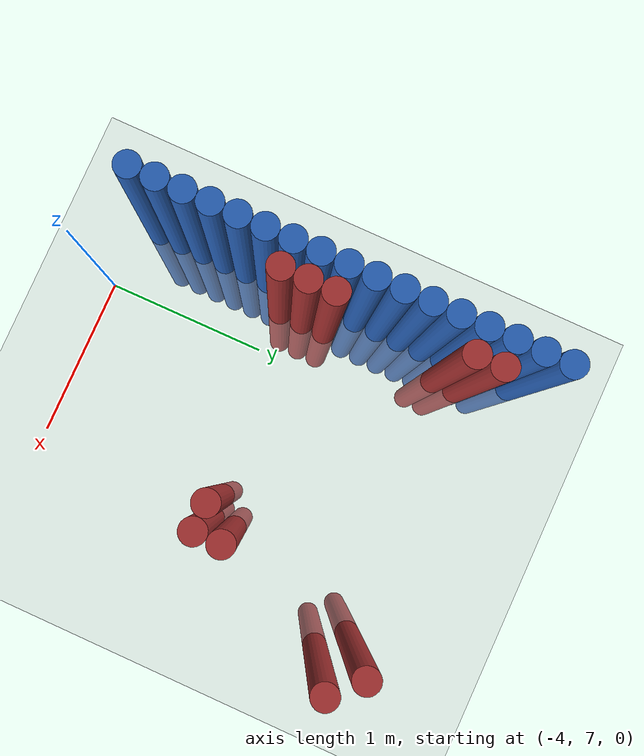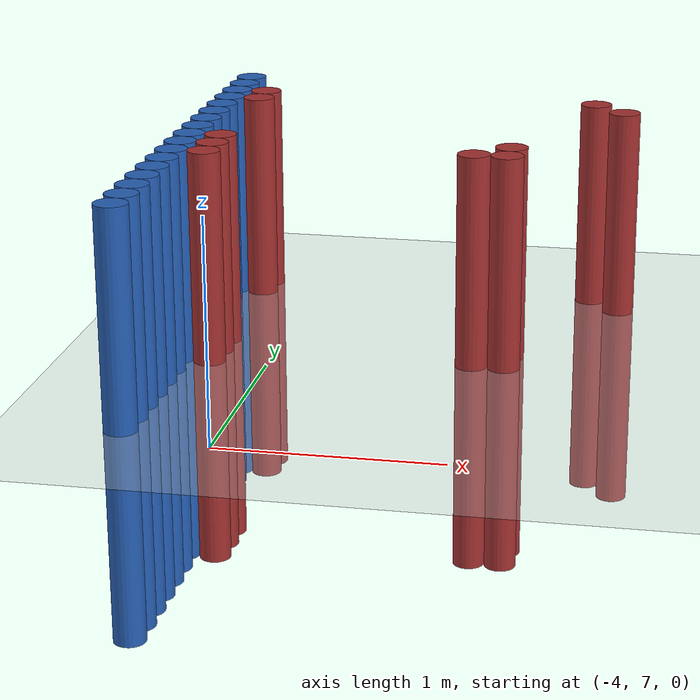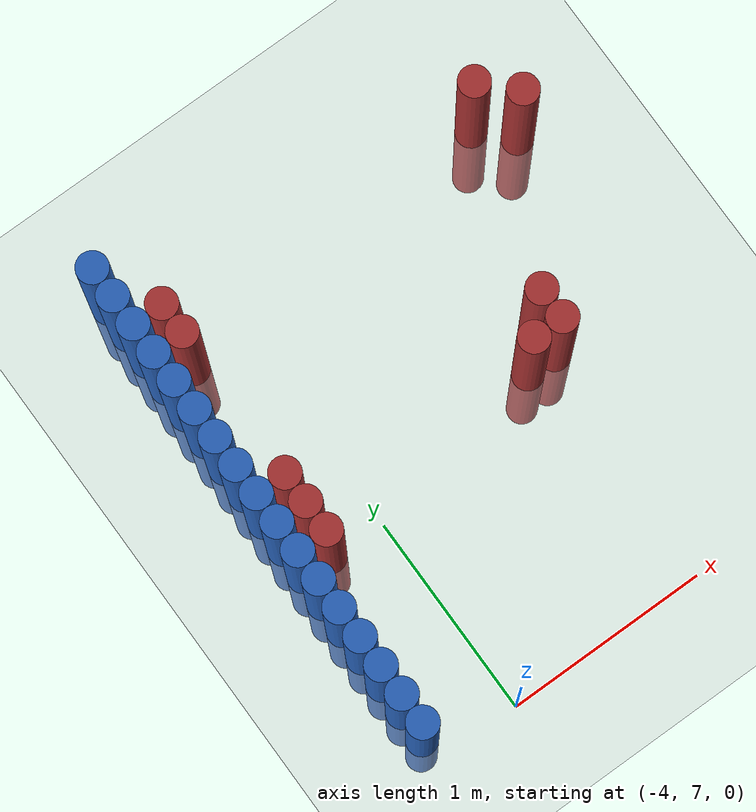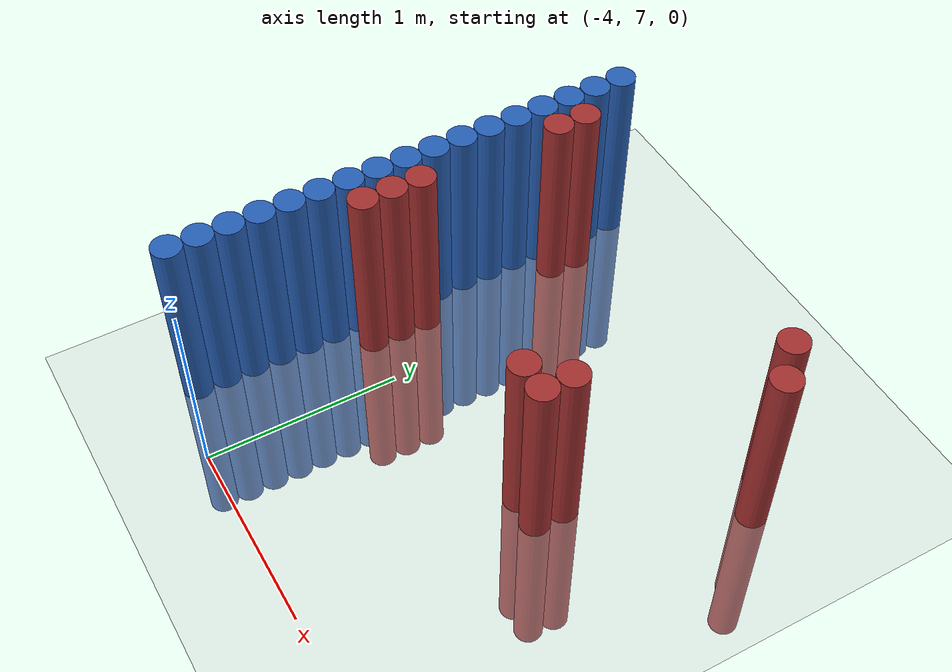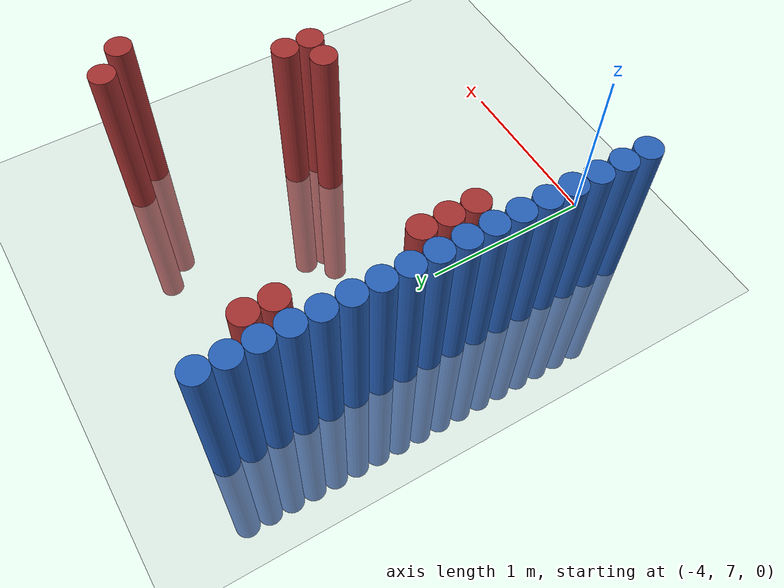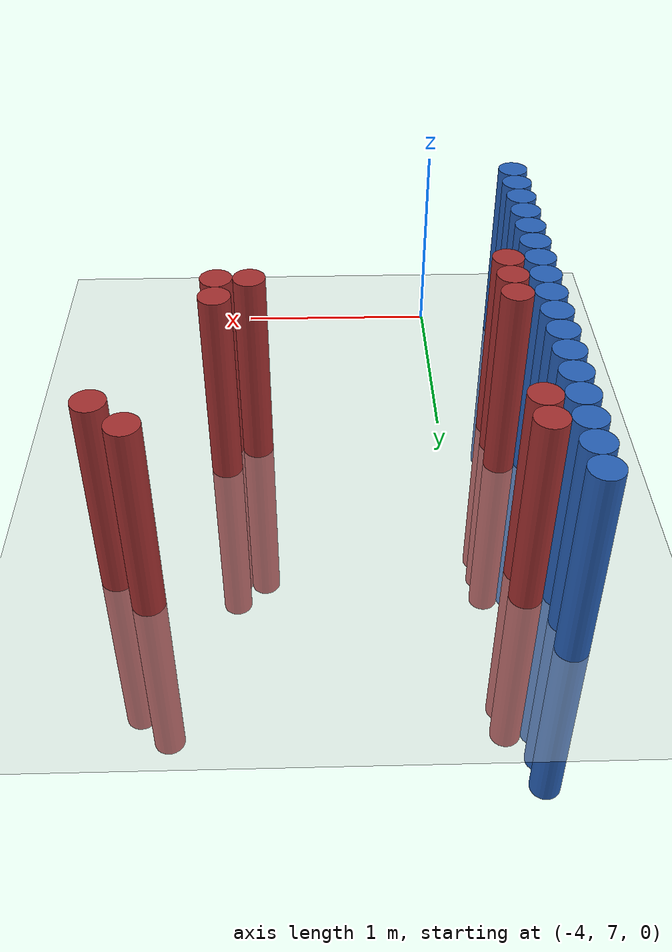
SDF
<sdf version="1.6">
 <world name="default">
  <model name="ground_plane">
   <static>1</static>
   <link name="link">
    <collision name="collision">
     <geometry><plane><normal>0 0 1</normal><size>100 100</size></plane></geometry>
     <surface><friction><ode><mu>100</mu><mu2>50</mu2></ode></friction></surface>
    </collision>
    <visual name="visual">
     <cast_shadows>0</cast_shadows>
     <geometry><plane><normal>0 0 1</normal><size>100 100</size></plane></geometry>
     <material>
      <script><uri>file://media/materials/scripts/gazebo.material</uri><name>Gazebo/Grey</name></script>
     </material>
    </visual>
   </link>
  </model>
  <model name="unit_cylinder_109">
   <static>1</static>
   <pose>-4.425000 7.125000 0.000000 0.000000 0.000000 0.000000</pose>
   <link name="link">
    <inertial>
     <mass>1</mass>
     <inertia><ixx>0.145833</ixx><ixy>0</ixy><ixz>0</ixz><iyy>0.145833</iyy><iyz>0</iyz><izz>0.125</izz></inertia>
    </inertial>
    <collision name="collision">
     <geometry><cylinder><radius>0.075000</radius><length>2</length></cylinder></geometry>
    </collision>
    <visual name="visual">
     <geometry><cylinder><radius>0.075000</radius><length>2</length></cylinder></geometry>
     <material>
      <ambient>0.152000 0.379000 0.720000 1</ambient>
      <diffuse>0.152000 0.379000 0.720000 1</diffuse>
     </material>
     <material>
      <script><name>Gazebo/Grey</name><uri>file://media/materials/scripts/gazebo.material</uri></script>
     </material>
    </visual>
   </link>
  </model>
  <model name="unit_cylinder_110">
   <static>1</static>
   <pose>-4.425000 7.275000 0.000000 0.000000 0.000000 0.000000</pose>
   <link name="link">
    <inertial>
     <mass>1</mass>
     <inertia><ixx>0.145833</ixx><ixy>0</ixy><ixz>0</ixz><iyy>0.145833</iyy><iyz>0</iyz><izz>0.125</izz></inertia>
    </inertial>
    <collision name="collision">
     <geometry><cylinder><radius>0.075000</radius><length>2</length></cylinder></geometry>
    </collision>
    <visual name="visual">
     <geometry><cylinder><radius>0.075000</radius><length>2</length></cylinder></geometry>
     <material>
      <ambient>0.152000 0.379000 0.720000 1</ambient>
      <diffuse>0.152000 0.379000 0.720000 1</diffuse>
     </material>
     <material>
      <script><name>Gazebo/Grey</name><uri>file://media/materials/scripts/gazebo.material</uri></script>
     </material>
    </visual>
   </link>
  </model>
  <model name="unit_cylinder_111">
   <static>1</static>
   <pose>-4.425000 7.425000 0.000000 0.000000 0.000000 0.000000</pose>
   <link name="link">
    <inertial>
     <mass>1</mass>
     <inertia><ixx>0.145833</ixx><ixy>0</ixy><ixz>0</ixz><iyy>0.145833</iyy><iyz>0</iyz><izz>0.125</izz></inertia>
    </inertial>
    <collision name="collision">
     <geometry><cylinder><radius>0.075000</radius><length>2</length></cylinder></geometry>
    </collision>
    <visual name="visual">
     <geometry><cylinder><radius>0.075000</radius><length>2</length></cylinder></geometry>
     <material>
      <ambient>0.152000 0.379000 0.720000 1</ambient>
      <diffuse>0.152000 0.379000 0.720000 1</diffuse>
     </material>
     <material>
      <script><name>Gazebo/Grey</name><uri>file://media/materials/scripts/gazebo.material</uri></script>
     </material>
    </visual>
   </link>
  </model>
  <model name="unit_cylinder_112">
   <static>1</static>
   <pose>-4.425000 7.575000 0.000000 0.000000 0.000000 0.000000</pose>
   <link name="link">
    <inertial>
     <mass>1</mass>
     <inertia><ixx>0.145833</ixx><ixy>0</ixy><ixz>0</ixz><iyy>0.145833</iyy><iyz>0</iyz><izz>0.125</izz></inertia>
    </inertial>
    <collision name="collision">
     <geometry><cylinder><radius>0.075000</radius><length>2</length></cylinder></geometry>
    </collision>
    <visual name="visual">
     <geometry><cylinder><radius>0.075000</radius><length>2</length></cylinder></geometry>
     <material>
      <ambient>0.152000 0.379000 0.720000 1</ambient>
      <diffuse>0.152000 0.379000 0.720000 1</diffuse>
     </material>
     <material>
      <script><name>Gazebo/Grey</name><uri>file://media/materials/scripts/gazebo.material</uri></script>
     </material>
    </visual>
   </link>
  </model>
  <model name="unit_cylinder_113">
   <static>1</static>
   <pose>-4.425000 7.725000 0.000000 0.000000 0.000000 0.000000</pose>
   <link name="link">
    <inertial>
     <mass>1</mass>
     <inertia><ixx>0.145833</ixx><ixy>0</ixy><ixz>0</ixz><iyy>0.145833</iyy><iyz>0</iyz><izz>0.125</izz></inertia>
    </inertial>
    <collision name="collision">
     <geometry><cylinder><radius>0.075000</radius><length>2</length></cylinder></geometry>
    </collision>
    <visual name="visual">
     <geometry><cylinder><radius>0.075000</radius><length>2</length></cylinder></geometry>
     <material>
      <ambient>0.152000 0.379000 0.720000 1</ambient>
      <diffuse>0.152000 0.379000 0.720000 1</diffuse>
     </material>
     <material>
      <script><name>Gazebo/Grey</name><uri>file://media/materials/scripts/gazebo.material</uri></script>
     </material>
    </visual>
   </link>
  </model>
  <model name="unit_cylinder_114">
   <static>1</static>
   <pose>-4.425000 7.875000 0.000000 0.000000 0.000000 0.000000</pose>
   <link name="link">
    <inertial>
     <mass>1</mass>
     <inertia><ixx>0.145833</ixx><ixy>0</ixy><ixz>0</ixz><iyy>0.145833</iyy><iyz>0</iyz><izz>0.125</izz></inertia>
    </inertial>
    <collision name="collision">
     <geometry><cylinder><radius>0.075000</radius><length>2</length></cylinder></geometry>
    </collision>
    <visual name="visual">
     <geometry><cylinder><radius>0.075000</radius><length>2</length></cylinder></geometry>
     <material>
      <ambient>0.152000 0.379000 0.720000 1</ambient>
      <diffuse>0.152000 0.379000 0.720000 1</diffuse>
     </material>
     <material>
      <script><name>Gazebo/Grey</name><uri>file://media/materials/scripts/gazebo.material</uri></script>
     </material>
    </visual>
   </link>
  </model>
  <model name="unit_cylinder_115">
   <static>1</static>
   <pose>-4.425000 8.025000 0.000000 0.000000 0.000000 0.000000</pose>
   <link name="link">
    <inertial>
     <mass>1</mass>
     <inertia><ixx>0.145833</ixx><ixy>0</ixy><ixz>0</ixz><iyy>0.145833</iyy><iyz>0</iyz><izz>0.125</izz></inertia>
    </inertial>
    <collision name="collision">
     <geometry><cylinder><radius>0.075000</radius><length>2</length></cylinder></geometry>
    </collision>
    <visual name="visual">
     <geometry><cylinder><radius>0.075000</radius><length>2</length></cylinder></geometry>
     <material>
      <ambient>0.152000 0.379000 0.720000 1</ambient>
      <diffuse>0.152000 0.379000 0.720000 1</diffuse>
     </material>
     <material>
      <script><name>Gazebo/Grey</name><uri>file://media/materials/scripts/gazebo.material</uri></script>
     </material>
    </visual>
   </link>
  </model>
  <model name="unit_cylinder_116">
   <static>1</static>
   <pose>-4.425000 8.175000 0.000000 0.000000 0.000000 0.000000</pose>
   <link name="link">
    <inertial>
     <mass>1</mass>
     <inertia><ixx>0.145833</ixx><ixy>0</ixy><ixz>0</ixz><iyy>0.145833</iyy><iyz>0</iyz><izz>0.125</izz></inertia>
    </inertial>
    <collision name="collision">
     <geometry><cylinder><radius>0.075000</radius><length>2</length></cylinder></geometry>
    </collision>
    <visual name="visual">
     <geometry><cylinder><radius>0.075000</radius><length>2</length></cylinder></geometry>
     <material>
      <ambient>0.152000 0.379000 0.720000 1</ambient>
      <diffuse>0.152000 0.379000 0.720000 1</diffuse>
     </material>
     <material>
      <script><name>Gazebo/Grey</name><uri>file://media/materials/scripts/gazebo.material</uri></script>
     </material>
    </visual>
   </link>
  </model>
  <model name="unit_cylinder_117">
   <static>1</static>
   <pose>-4.425000 8.325000 0.000000 0.000000 0.000000 0.000000</pose>
   <link name="link">
    <inertial>
     <mass>1</mass>
     <inertia><ixx>0.145833</ixx><ixy>0</ixy><ixz>0</ixz><iyy>0.145833</iyy><iyz>0</iyz><izz>0.125</izz></inertia>
    </inertial>
    <collision name="collision">
     <geometry><cylinder><radius>0.075000</radius><length>2</length></cylinder></geometry>
    </collision>
    <visual name="visual">
     <geometry><cylinder><radius>0.075000</radius><length>2</length></cylinder></geometry>
     <material>
      <ambient>0.152000 0.379000 0.720000 1</ambient>
      <diffuse>0.152000 0.379000 0.720000 1</diffuse>
     </material>
     <material>
      <script><name>Gazebo/Grey</name><uri>file://media/materials/scripts/gazebo.material</uri></script>
     </material>
    </visual>
   </link>
  </model>
  <model name="unit_cylinder_118">
   <static>1</static>
   <pose>-4.425000 8.475000 0.000000 0.000000 0.000000 0.000000</pose>
   <link name="link">
    <inertial>
     <mass>1</mass>
     <inertia><ixx>0.145833</ixx><ixy>0</ixy><ixz>0</ixz><iyy>0.145833</iyy><iyz>0</iyz><izz>0.125</izz></inertia>
    </inertial>
    <collision name="collision">
     <geometry><cylinder><radius>0.075000</radius><length>2</length></cylinder></geometry>
    </collision>
    <visual name="visual">
     <geometry><cylinder><radius>0.075000</radius><length>2</length></cylinder></geometry>
     <material>
      <ambient>0.152000 0.379000 0.720000 1</ambient>
      <diffuse>0.152000 0.379000 0.720000 1</diffuse>
     </material>
     <material>
      <script><name>Gazebo/Grey</name><uri>file://media/materials/scripts/gazebo.material</uri></script>
     </material>
    </visual>
   </link>
  </model>
  <model name="unit_cylinder_119">
   <static>1</static>
   <pose>-4.425000 8.625000 0.000000 0.000000 0.000000 0.000000</pose>
   <link name="link">
    <inertial>
     <mass>1</mass>
     <inertia><ixx>0.145833</ixx><ixy>0</ixy><ixz>0</ixz><iyy>0.145833</iyy><iyz>0</iyz><izz>0.125</izz></inertia>
    </inertial>
    <collision name="collision">
     <geometry><cylinder><radius>0.075000</radius><length>2</length></cylinder></geometry>
    </collision>
    <visual name="visual">
     <geometry><cylinder><radius>0.075000</radius><length>2</length></cylinder></geometry>
     <material>
      <ambient>0.152000 0.379000 0.720000 1</ambient>
      <diffuse>0.152000 0.379000 0.720000 1</diffuse>
     </material>
     <material>
      <script><name>Gazebo/Grey</name><uri>file://media/materials/scripts/gazebo.material</uri></script>
     </material>
    </visual>
   </link>
  </model>
  <model name="unit_cylinder_120">
   <static>1</static>
   <pose>-4.425000 8.775000 0.000000 0.000000 0.000000 0.000000</pose>
   <link name="link">
    <inertial>
     <mass>1</mass>
     <inertia><ixx>0.145833</ixx><ixy>0</ixy><ixz>0</ixz><iyy>0.145833</iyy><iyz>0</iyz><izz>0.125</izz></inertia>
    </inertial>
    <collision name="collision">
     <geometry><cylinder><radius>0.075000</radius><length>2</length></cylinder></geometry>
    </collision>
    <visual name="visual">
     <geometry><cylinder><radius>0.075000</radius><length>2</length></cylinder></geometry>
     <material>
      <ambient>0.152000 0.379000 0.720000 1</ambient>
      <diffuse>0.152000 0.379000 0.720000 1</diffuse>
     </material>
     <material>
      <script><name>Gazebo/Grey</name><uri>file://media/materials/scripts/gazebo.material</uri></script>
     </material>
    </visual>
   </link>
  </model>
  <model name="unit_cylinder_121">
   <static>1</static>
   <pose>-4.425000 8.925000 0.000000 0.000000 0.000000 0.000000</pose>
   <link name="link">
    <inertial>
     <mass>1</mass>
     <inertia><ixx>0.145833</ixx><ixy>0</ixy><ixz>0</ixz><iyy>0.145833</iyy><iyz>0</iyz><izz>0.125</izz></inertia>
    </inertial>
    <collision name="collision">
     <geometry><cylinder><radius>0.075000</radius><length>2</length></cylinder></geometry>
    </collision>
    <visual name="visual">
     <geometry><cylinder><radius>0.075000</radius><length>2</length></cylinder></geometry>
     <material>
      <ambient>0.152000 0.379000 0.720000 1</ambient>
      <diffuse>0.152000 0.379000 0.720000 1</diffuse>
     </material>
     <material>
      <script><name>Gazebo/Grey</name><uri>file://media/materials/scripts/gazebo.material</uri></script>
     </material>
    </visual>
   </link>
  </model>
  <model name="unit_cylinder_122">
   <static>1</static>
   <pose>-4.425000 9.075000 0.000000 0.000000 0.000000 0.000000</pose>
   <link name="link">
    <inertial>
     <mass>1</mass>
     <inertia><ixx>0.145833</ixx><ixy>0</ixy><ixz>0</ixz><iyy>0.145833</iyy><iyz>0</iyz><izz>0.125</izz></inertia>
    </inertial>
    <collision name="collision">
     <geometry><cylinder><radius>0.075000</radius><length>2</length></cylinder></geometry>
    </collision>
    <visual name="visual">
     <geometry><cylinder><radius>0.075000</radius><length>2</length></cylinder></geometry>
     <material>
      <ambient>0.152000 0.379000 0.720000 1</ambient>
      <diffuse>0.152000 0.379000 0.720000 1</diffuse>
     </material>
     <material>
      <script><name>Gazebo/Grey</name><uri>file://media/materials/scripts/gazebo.material</uri></script>
     </material>
    </visual>
   </link>
  </model>
  <model name="unit_cylinder_123">
   <static>1</static>
   <pose>-4.425000 9.225000 0.000000 0.000000 0.000000 0.000000</pose>
   <link name="link">
    <inertial>
     <mass>1</mass>
     <inertia><ixx>0.145833</ixx><ixy>0</ixy><ixz>0</ixz><iyy>0.145833</iyy><iyz>0</iyz><izz>0.125</izz></inertia>
    </inertial>
    <collision name="collision">
     <geometry><cylinder><radius>0.075000</radius><length>2</length></cylinder></geometry>
    </collision>
    <visual name="visual">
     <geometry><cylinder><radius>0.075000</radius><length>2</length></cylinder></geometry>
     <material>
      <ambient>0.152000 0.379000 0.720000 1</ambient>
      <diffuse>0.152000 0.379000 0.720000 1</diffuse>
     </material>
     <material>
      <script><name>Gazebo/Grey</name><uri>file://media/materials/scripts/gazebo.material</uri></script>
     </material>
    </visual>
   </link>
  </model>
  <model name="unit_cylinder_124">
   <static>1</static>
   <pose>-4.425000 9.375000 0.000000 0.000000 0.000000 0.000000</pose>
   <link name="link">
    <inertial>
     <mass>1</mass>
     <inertia><ixx>0.145833</ixx><ixy>0</ixy><ixz>0</ixz><iyy>0.145833</iyy><iyz>0</iyz><izz>0.125</izz></inertia>
    </inertial>
    <collision name="collision">
     <geometry><cylinder><radius>0.075000</radius><length>2</length></cylinder></geometry>
    </collision>
    <visual name="visual">
     <geometry><cylinder><radius>0.075000</radius><length>2</length></cylinder></geometry>
     <material>
      <ambient>0.152000 0.379000 0.720000 1</ambient>
      <diffuse>0.152000 0.379000 0.720000 1</diffuse>
     </material>
     <material>
      <script><name>Gazebo/Grey</name><uri>file://media/materials/scripts/gazebo.material</uri></script>
     </material>
    </visual>
   </link>
  </model>
  <model name="unit_cylinder_125">
   <static>1</static>
   <pose>-4.425000 9.525000 0.000000 0.000000 0.000000 0.000000</pose>
   <link name="link">
    <inertial>
     <mass>1</mass>
     <inertia><ixx>0.145833</ixx><ixy>0</ixy><ixz>0</ixz><iyy>0.145833</iyy><iyz>0</iyz><izz>0.125</izz></inertia>
    </inertial>
    <collision name="collision">
     <geometry><cylinder><radius>0.075000</radius><length>2</length></cylinder></geometry>
    </collision>
    <visual name="visual">
     <geometry><cylinder><radius>0.075000</radius><length>2</length></cylinder></geometry>
     <material>
      <ambient>0.152000 0.379000 0.720000 1</ambient>
      <diffuse>0.152000 0.379000 0.720000 1</diffuse>
     </material>
     <material>
      <script><name>Gazebo/Grey</name><uri>file://media/materials/scripts/gazebo.material</uri></script>
     </material>
    </visual>
   </link>
  </model>
  <model name="unit_cylinder_133">
   <static>1</static>
   <pose>-4.275000 8.025000 0.000000 0.000000 0.000000 0.000000</pose>
   <link name="link">
    <inertial>
     <mass>1</mass>
     <inertia><ixx>0.145833</ixx><ixy>0</ixy><ixz>0</ixz><iyy>0.145833</iyy><iyz>0</iyz><izz>0.125</izz></inertia>
    </inertial>
    <collision name="collision">
     <geometry><cylinder><radius>0.075000</radius><length>2</length></cylinder></geometry>
    </collision>
    <visual name="visual">
     <geometry><cylinder><radius>0.075000</radius><length>2</length></cylinder></geometry>
     <material>
      <ambient>0.648000 0.192000 0.192000 1</ambient>
      <diffuse>0.648000 0.192000 0.192000 1</diffuse>
     </material>
     <material>
      <script><name>Gazebo/Grey</name><uri>file://media/materials/scripts/gazebo.material</uri></script>
     </material>
    </visual>
   </link>
  </model>
  <model name="unit_cylinder_134">
   <static>1</static>
   <pose>-4.275000 8.175000 0.000000 0.000000 0.000000 0.000000</pose>
   <link name="link">
    <inertial>
     <mass>1</mass>
     <inertia><ixx>0.145833</ixx><ixy>0</ixy><ixz>0</ixz><iyy>0.145833</iyy><iyz>0</iyz><izz>0.125</izz></inertia>
    </inertial>
    <collision name="collision">
     <geometry><cylinder><radius>0.075000</radius><length>2</length></cylinder></geometry>
    </collision>
    <visual name="visual">
     <geometry><cylinder><radius>0.075000</radius><length>2</length></cylinder></geometry>
     <material>
      <ambient>0.648000 0.192000 0.192000 1</ambient>
      <diffuse>0.648000 0.192000 0.192000 1</diffuse>
     </material>
     <material>
      <script><name>Gazebo/Grey</name><uri>file://media/materials/scripts/gazebo.material</uri></script>
     </material>
    </visual>
   </link>
  </model>
  <model name="unit_cylinder_135">
   <static>1</static>
   <pose>-4.275000 8.325000 0.000000 0.000000 0.000000 0.000000</pose>
   <link name="link">
    <inertial>
     <mass>1</mass>
     <inertia><ixx>0.145833</ixx><ixy>0</ixy><ixz>0</ixz><iyy>0.145833</iyy><iyz>0</iyz><izz>0.125</izz></inertia>
    </inertial>
    <collision name="collision">
     <geometry><cylinder><radius>0.075000</radius><length>2</length></cylinder></geometry>
    </collision>
    <visual name="visual">
     <geometry><cylinder><radius>0.075000</radius><length>2</length></cylinder></geometry>
     <material>
      <ambient>0.648000 0.192000 0.192000 1</ambient>
      <diffuse>0.648000 0.192000 0.192000 1</diffuse>
     </material>
     <material>
      <script><name>Gazebo/Grey</name><uri>file://media/materials/scripts/gazebo.material</uri></script>
     </material>
    </visual>
   </link>
  </model>
  <model name="unit_cylinder_136">
   <static>1</static>
   <pose>-4.275000 9.075000 0.000000 0.000000 0.000000 0.000000</pose>
   <link name="link">
    <inertial>
     <mass>1</mass>
     <inertia><ixx>0.145833</ixx><ixy>0</ixy><ixz>0</ixz><iyy>0.145833</iyy><iyz>0</iyz><izz>0.125</izz></inertia>
    </inertial>
    <collision name="collision">
     <geometry><cylinder><radius>0.075000</radius><length>2</length></cylinder></geometry>
    </collision>
    <visual name="visual">
     <geometry><cylinder><radius>0.075000</radius><length>2</length></cylinder></geometry>
     <material>
      <ambient>0.648000 0.192000 0.192000 1</ambient>
      <diffuse>0.648000 0.192000 0.192000 1</diffuse>
     </material>
     <material>
      <script><name>Gazebo/Grey</name><uri>file://media/materials/scripts/gazebo.material</uri></script>
     </material>
    </visual>
   </link>
  </model>
  <model name="unit_cylinder_137">
   <static>1</static>
   <pose>-4.275000 9.225000 0.000000 0.000000 0.000000 0.000000</pose>
   <link name="link">
    <inertial>
     <mass>1</mass>
     <inertia><ixx>0.145833</ixx><ixy>0</ixy><ixz>0</ixz><iyy>0.145833</iyy><iyz>0</iyz><izz>0.125</izz></inertia>
    </inertial>
    <collision name="collision">
     <geometry><cylinder><radius>0.075000</radius><length>2</length></cylinder></geometry>
    </collision>
    <visual name="visual">
     <geometry><cylinder><radius>0.075000</radius><length>2</length></cylinder></geometry>
     <material>
      <ambient>0.648000 0.192000 0.192000 1</ambient>
      <diffuse>0.648000 0.192000 0.192000 1</diffuse>
     </material>
     <material>
      <script><name>Gazebo/Grey</name><uri>file://media/materials/scripts/gazebo.material</uri></script>
     </material>
    </visual>
   </link>
  </model>
  <model name="unit_cylinder_150">
   <static>1</static>
   <pose>-3.075000 8.175000 0.000000 0.000000 0.000000 0.000000</pose>
   <link name="link">
    <inertial>
     <mass>1</mass>
     <inertia><ixx>0.145833</ixx><ixy>0</ixy><ixz>0</ixz><iyy>0.145833</iyy><iyz>0</iyz><izz>0.125</izz></inertia>
    </inertial>
    <collision name="collision">
     <geometry><cylinder><radius>0.075000</radius><length>2</length></cylinder></geometry>
    </collision>
    <visual name="visual">
     <geometry><cylinder><radius>0.075000</radius><length>2</length></cylinder></geometry>
     <material>
      <ambient>0.648000 0.192000 0.192000 1</ambient>
      <diffuse>0.648000 0.192000 0.192000 1</diffuse>
     </material>
     <material>
      <script><name>Gazebo/Grey</name><uri>file://media/materials/scripts/gazebo.material</uri></script>
     </material>
    </visual>
   </link>
  </model>
  <model name="unit_cylinder_151">
   <static>1</static>
   <pose>-2.925000 8.175000 0.000000 0.000000 0.000000 0.000000</pose>
   <link name="link">
    <inertial>
     <mass>1</mass>
     <inertia><ixx>0.145833</ixx><ixy>0</ixy><ixz>0</ixz><iyy>0.145833</iyy><iyz>0</iyz><izz>0.125</izz></inertia>
    </inertial>
    <collision name="collision">
     <geometry><cylinder><radius>0.075000</radius><length>2</length></cylinder></geometry>
    </collision>
    <visual name="visual">
     <geometry><cylinder><radius>0.075000</radius><length>2</length></cylinder></geometry>
     <material>
      <ambient>0.648000 0.192000 0.192000 1</ambient>
      <diffuse>0.648000 0.192000 0.192000 1</diffuse>
     </material>
     <material>
      <script><name>Gazebo/Grey</name><uri>file://media/materials/scripts/gazebo.material</uri></script>
     </material>
    </visual>
   </link>
  </model>
  <model name="unit_cylinder_152">
   <static>1</static>
   <pose>-2.925000 8.325000 0.000000 0.000000 0.000000 0.000000</pose>
   <link name="link">
    <inertial>
     <mass>1</mass>
     <inertia><ixx>0.145833</ixx><ixy>0</ixy><ixz>0</ixz><iyy>0.145833</iyy><iyz>0</iyz><izz>0.125</izz></inertia>
    </inertial>
    <collision name="collision">
     <geometry><cylinder><radius>0.075000</radius><length>2</length></cylinder></geometry>
    </collision>
    <visual name="visual">
     <geometry><cylinder><radius>0.075000</radius><length>2</length></cylinder></geometry>
     <material>
      <ambient>0.648000 0.192000 0.192000 1</ambient>
      <diffuse>0.648000 0.192000 0.192000 1</diffuse>
     </material>
     <material>
      <script><name>Gazebo/Grey</name><uri>file://media/materials/scripts/gazebo.material</uri></script>
     </material>
    </visual>
   </link>
  </model>
  <model name="unit_cylinder_153">
   <static>1</static>
   <pose>-2.625000 9.225000 0.000000 0.000000 0.000000 0.000000</pose>
   <link name="link">
    <inertial>
     <mass>1</mass>
     <inertia><ixx>0.145833</ixx><ixy>0</ixy><ixz>0</ixz><iyy>0.145833</iyy><iyz>0</iyz><izz>0.125</izz></inertia>
    </inertial>
    <collision name="collision">
     <geometry><cylinder><radius>0.075000</radius><length>2</length></cylinder></geometry>
    </collision>
    <visual name="visual">
     <geometry><cylinder><radius>0.075000</radius><length>2</length></cylinder></geometry>
     <material>
      <ambient>0.648000 0.192000 0.192000 1</ambient>
      <diffuse>0.648000 0.192000 0.192000 1</diffuse>
     </material>
     <material>
      <script><name>Gazebo/Grey</name><uri>file://media/materials/scripts/gazebo.material</uri></script>
     </material>
    </visual>
   </link>
  </model>
  <model name="unit_cylinder_154">
   <static>1</static>
   <pose>-2.475000 9.075000 0.000000 0.000000 0.000000 0.000000</pose>
   <link name="link">
    <inertial>
     <mass>1</mass>
     <inertia><ixx>0.145833</ixx><ixy>0</ixy><ixz>0</ixz><iyy>0.145833</iyy><iyz>0</iyz><izz>0.125</izz></inertia>
    </inertial>
    <collision name="collision">
     <geometry><cylinder><radius>0.075000</radius><length>2</length></cylinder></geometry>
    </collision>
    <visual name="visual">
     <geometry><cylinder><radius>0.075000</radius><length>2</length></cylinder></geometry>
     <material>
      <ambient>0.648000 0.192000 0.192000 1</ambient>
      <diffuse>0.648000 0.192000 0.192000 1</diffuse>
     </material>
     <material>
      <script><name>Gazebo/Grey</name><uri>file://media/materials/scripts/gazebo.material</uri></script>
     </material>
    </visual>
   </link>
  </model>
 </world>
</sdf>
